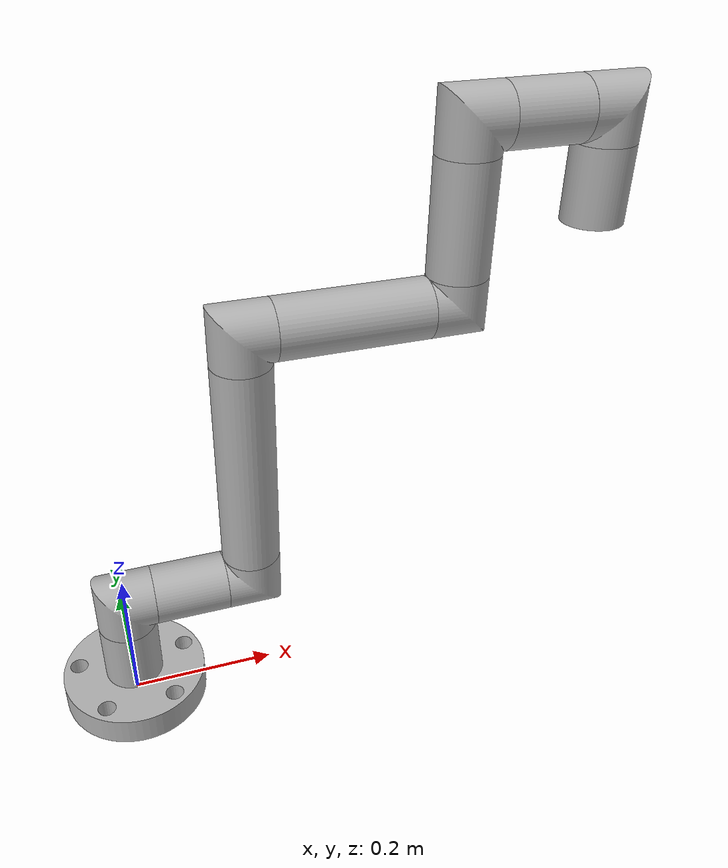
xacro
<?xml version="1.0" ?>
<robot name="Finalporsia" xmlns:xacro="http://www.ros.org/wiki/xacro">

<xacro:include filename="$(find Finalporsia_description)/urdf/materials.xacro" />
<xacro:include filename="$(find Finalporsia_description)/urdf/Finalporsia.trans" />
<xacro:include filename="$(find Finalporsia_description)/urdf/Finalporsia.gazebo" />
<link name="base_link">
  <inertial>
    <origin rpy="0 0 0" xyz="-1.2735343093175715e-13 -1.8051513952056297e-17 0.019251753702260326"/>
    <mass value="7.910176872565533"/>
    <inertia ixx="0.022781" ixy="-0.0" ixz="0.0" iyy="0.022781" iyz="0.0" izz="0.043383"/>
  </inertial>
  <visual>
    <origin rpy="0 0 0" xyz="0 0 0"/>
    <geometry>
      <mesh filename="package://Finalporsia_description/meshes/base_link.stl" scale="0.001 0.001 0.001"/>
    </geometry>
    <material name="silver"/>
  </visual>
  <collision>
    <origin rpy="0 0 0" xyz="0 0 0"/>
    <geometry>
      <mesh filename="package://Finalporsia_description/meshes/base_link.stl" scale="0.001 0.001 0.001"/>
    </geometry>
  </collision>
</link>

<link name="Component14_1">
  <inertial>
    <origin rpy="0 0 0" xyz="-4.545697152025241e-12 -3.674055437052949e-11 -0.04919483100108901"/>
    <mass value="3.876479897603745"/>
    <inertia ixx="0.004691" ixy="-0.0" ixz="-0.0" iyy="0.004691" iyz="0.0" izz="0.003092"/>
  </inertial>
  <visual>
    <origin rpy="0 0 0" xyz="-0.64 0.0 -0.74"/>
    <geometry>
      <mesh filename="package://Finalporsia_description/meshes/Component14_1.stl" scale="0.001 0.001 0.001"/>
    </geometry>
    <material name="silver"/>
  </visual>
  <collision>
    <origin rpy="0 0 0" xyz="-0.64 0.0 -0.74"/>
    <geometry>
      <mesh filename="package://Finalporsia_description/meshes/Component14_1.stl" scale="0.001 0.001 0.001"/>
    </geometry>
  </collision>
</link>

<link name="Component13_1">
  <inertial>
    <origin rpy="0 0 0" xyz="0.03749999997575548 -1.2727032991334325e-10 -0.002499999953929133"/>
    <mass value="3.156672298327024"/>
    <inertia ixx="0.002716" ixy="-0.0" ixz="2e-05" iyy="0.002907" iyz="0.0" izz="0.002716"/>
  </inertial>
  <visual>
    <origin rpy="0 0 0" xyz="-0.6 0.0 -0.78"/>
    <geometry>
      <mesh filename="package://Finalporsia_description/meshes/Component13_1.stl" scale="0.001 0.001 0.001"/>
    </geometry>
    <material name="silver"/>
  </visual>
  <collision>
    <origin rpy="0 0 0" xyz="-0.6 0.0 -0.78"/>
    <geometry>
      <mesh filename="package://Finalporsia_description/meshes/Component13_1.stl" scale="0.001 0.001 0.001"/>
    </geometry>
  </collision>
</link>

<link name="Component12_1">
  <inertial>
    <origin rpy="0 0 0" xyz="0.04999999997573523 -1.2765637495659394e-10 4.535805064875831e-11"/>
    <mass value="3.9458403729087896"/>
    <inertia ixx="0.003157" ixy="0.0" ixz="-0.0" iyy="0.004867" iyz="0.0" izz="0.004867"/>
  </inertial>
  <visual>
    <origin rpy="0 0 0" xyz="-0.5 0.0 -0.78"/>
    <geometry>
      <mesh filename="package://Finalporsia_description/meshes/Component12_1.stl" scale="0.001 0.001 0.001"/>
    </geometry>
    <material name="silver"/>
  </visual>
  <collision>
    <origin rpy="0 0 0" xyz="-0.5 0.0 -0.78"/>
    <geometry>
      <mesh filename="package://Finalporsia_description/meshes/Component12_1.stl" scale="0.001 0.001 0.001"/>
    </geometry>
  </collision>
</link>

<link name="Component11_1">
  <inertial>
    <origin rpy="0 0 0" xyz="0.00249999997575584 -1.2726988728068545e-10 0.037500000044644155"/>
    <mass value="3.156672298327024"/>
    <inertia ixx="0.002716" ixy="0.0" ixz="-2e-05" iyy="0.002907" iyz="0.0" izz="0.002716"/>
  </inertial>
  <visual>
    <origin rpy="0 0 0" xyz="-0.46 0.0 -0.74"/>
    <geometry>
      <mesh filename="package://Finalporsia_description/meshes/Component11_1.stl" scale="0.001 0.001 0.001"/>
    </geometry>
    <material name="silver"/>
  </visual>
  <collision>
    <origin rpy="0 0 0" xyz="-0.46 0.0 -0.74"/>
    <geometry>
      <mesh filename="package://Finalporsia_description/meshes/Component11_1.stl" scale="0.001 0.001 0.001"/>
    </geometry>
  </collision>
</link>

<link name="Component10_1">
  <inertial>
    <origin rpy="0 0 0" xyz="-2.3327395570760245e-11 -1.0987604905552365e-10 0.07500000004462448"/>
    <mass value="5.91876055936317"/>
    <inertia ixx="0.013465" ixy="0.0" ixz="0.0" iyy="0.013465" iyz="0.0" izz="0.004735"/>
  </inertial>
  <visual>
    <origin rpy="0 0 0" xyz="-0.46 0.0 -0.59"/>
    <geometry>
      <mesh filename="package://Finalporsia_description/meshes/Component10_1.stl" scale="0.001 0.001 0.001"/>
    </geometry>
    <material name="silver"/>
  </visual>
  <collision>
    <origin rpy="0 0 0" xyz="-0.46 0.0 -0.59"/>
    <geometry>
      <mesh filename="package://Finalporsia_description/meshes/Component10_1.stl" scale="0.001 0.001 0.001"/>
    </geometry>
  </collision>
</link>

<link name="Component9_1">
  <inertial>
    <origin rpy="0 0 0" xyz="0.037499999977589626 -9.248224070317917e-11 0.002500000044604045"/>
    <mass value="3.1566722983270243"/>
    <inertia ixx="0.002716" ixy="0.0" ixz="-2e-05" iyy="0.002907" iyz="0.0" izz="0.002716"/>
  </inertial>
  <visual>
    <origin rpy="0 0 0" xyz="-0.42 0.0 -0.55"/>
    <geometry>
      <mesh filename="package://Finalporsia_description/meshes/Component9_1.stl" scale="0.001 0.001 0.001"/>
    </geometry>
    <material name="silver"/>
  </visual>
  <collision>
    <origin rpy="0 0 0" xyz="-0.42 0.0 -0.55"/>
    <geometry>
      <mesh filename="package://Finalporsia_description/meshes/Component9_1.stl" scale="0.001 0.001 0.001"/>
    </geometry>
  </collision>
</link>

<link name="Component8_1">
  <inertial>
    <origin rpy="0 0 0" xyz="0.09999999997760997 -9.209581122134614e-11 4.348299498246888e-11"/>
    <mass value="7.891680745817552"/>
    <inertia ixx="0.006313" ixy="-0.0" ixz="-0.0" iyy="0.029462" iyz="0.0" izz="0.029462"/>
  </inertial>
  <visual>
    <origin rpy="0 0 0" xyz="-0.22 0.0 -0.55"/>
    <geometry>
      <mesh filename="package://Finalporsia_description/meshes/Component8_1.stl" scale="0.001 0.001 0.001"/>
    </geometry>
    <material name="silver"/>
  </visual>
  <collision>
    <origin rpy="0 0 0" xyz="-0.22 0.0 -0.55"/>
    <geometry>
      <mesh filename="package://Finalporsia_description/meshes/Component8_1.stl" scale="0.001 0.001 0.001"/>
    </geometry>
  </collision>
</link>

<link name="Component7_1">
  <inertial>
    <origin rpy="0 0 0" xyz="0.002499999976995182 -9.177960162430434e-11 0.0375000000425737"/>
    <mass value="3.156672298327024"/>
    <inertia ixx="0.002716" ixy="0.0" ixz="-2e-05" iyy="0.002907" iyz="0.0" izz="0.002716"/>
  </inertial>
  <visual>
    <origin rpy="0 0 0" xyz="-0.18 -0.0 -0.51"/>
    <geometry>
      <mesh filename="package://Finalporsia_description/meshes/Component7_1.stl" scale="0.001 0.001 0.001"/>
    </geometry>
    <material name="silver"/>
  </visual>
  <collision>
    <origin rpy="0 0 0" xyz="-0.18 -0.0 -0.51"/>
    <geometry>
      <mesh filename="package://Finalporsia_description/meshes/Component7_1.stl" scale="0.001 0.001 0.001"/>
    </geometry>
  </collision>
</link>

<link name="Component6_1">
  <inertial>
    <origin rpy="0 0 0" xyz="5.842187844606883e-12 2.521468302556732e-11 0.14999999999446453"/>
    <mass value="11.837521118726338"/>
    <inertia ixx="0.093516" ixy="0.0" ixz="-0.0" iyy="0.093516" iyz="-0.0" izz="0.00947"/>
  </inertial>
  <visual>
    <origin rpy="0 0 0" xyz="-0.18 -0.0 -0.21"/>
    <geometry>
      <mesh filename="package://Finalporsia_description/meshes/Component6_1.stl" scale="0.001 0.001 0.001"/>
    </geometry>
    <material name="silver"/>
  </visual>
  <collision>
    <origin rpy="0 0 0" xyz="-0.18 -0.0 -0.21"/>
    <geometry>
      <mesh filename="package://Finalporsia_description/meshes/Component6_1.stl" scale="0.001 0.001 0.001"/>
    </geometry>
  </collision>
</link>

<link name="Component5_1">
  <inertial>
    <origin rpy="0 0 0" xyz="0.037500000000076084 3.3190883744839116e-13 0.002499999994541535"/>
    <mass value="3.156672298327024"/>
    <inertia ixx="0.002716" ixy="-0.0" ixz="-2e-05" iyy="0.002907" iyz="-0.0" izz="0.002716"/>
  </inertial>
  <visual>
    <origin rpy="0 0 0" xyz="-0.14 -0.0 -0.17"/>
    <geometry>
      <mesh filename="package://Finalporsia_description/meshes/Component5_1.stl" scale="0.001 0.001 0.001"/>
    </geometry>
    <material name="silver"/>
  </visual>
  <collision>
    <origin rpy="0 0 0" xyz="-0.14 -0.0 -0.17"/>
    <geometry>
      <mesh filename="package://Finalporsia_description/meshes/Component5_1.stl" scale="0.001 0.001 0.001"/>
    </geometry>
  </collision>
</link>

<link name="Component4_1">
  <inertial>
    <origin rpy="0 0 0" xyz="0.04999999999999966 1.340279702599643e-16 -2.767813755966131e-12"/>
    <mass value="3.94584037290878"/>
    <inertia ixx="0.003157" ixy="-0.0" ixz="0.0" iyy="0.004867" iyz="0.0" izz="0.004867"/>
  </inertial>
  <visual>
    <origin rpy="0 0 0" xyz="-0.04 0.0 -0.17"/>
    <geometry>
      <mesh filename="package://Finalporsia_description/meshes/Component4_1.stl" scale="0.001 0.001 0.001"/>
    </geometry>
    <material name="silver"/>
  </visual>
  <collision>
    <origin rpy="0 0 0" xyz="-0.04 0.0 -0.17"/>
    <geometry>
      <mesh filename="package://Finalporsia_description/meshes/Component4_1.stl" scale="0.001 0.001 0.001"/>
    </geometry>
  </collision>
</link>

<link name="Component3_1">
  <inertial>
    <origin rpy="0 0 0" xyz="0.002500000000000161 0.0 0.03749999999999981"/>
    <mass value="3.156672298327024"/>
    <inertia ixx="0.002716" ixy="0.0" ixz="-2e-05" iyy="0.002907" iyz="0.0" izz="0.002716"/>
  </inertial>
  <visual>
    <origin rpy="0 0 0" xyz="-0.0 -0.0 -0.13"/>
    <geometry>
      <mesh filename="package://Finalporsia_description/meshes/Component3_1.stl" scale="0.001 0.001 0.001"/>
    </geometry>
    <material name="silver"/>
  </visual>
  <collision>
    <origin rpy="0 0 0" xyz="-0.0 -0.0 -0.13"/>
    <geometry>
      <mesh filename="package://Finalporsia_description/meshes/Component3_1.stl" scale="0.001 0.001 0.001"/>
    </geometry>
  </collision>
</link>

<link name="Component2_1">
  <inertial>
    <origin rpy="0 0 0" xyz="0.0 0.0 0.060000000000000005"/>
    <mass value="4.735008447490536"/>
    <inertia ixx="0.007576" ixy="0.0" ixz="0.0" iyy="0.007576" iyz="0.0" izz="0.003788"/>
  </inertial>
  <visual>
    <origin rpy="0 0 0" xyz="-0.0 -0.0 -0.01"/>
    <geometry>
      <mesh filename="package://Finalporsia_description/meshes/Component2_1.stl" scale="0.001 0.001 0.001"/>
    </geometry>
    <material name="silver"/>
  </visual>
  <collision>
    <origin rpy="0 0 0" xyz="-0.0 -0.0 -0.01"/>
    <geometry>
      <mesh filename="package://Finalporsia_description/meshes/Component2_1.stl" scale="0.001 0.001 0.001"/>
    </geometry>
  </collision>
</link>

<joint name="Rev1" type="continuous">
  <origin rpy="0 0 0" xyz="0.04 0.0 -0.04"/>
  <parent link="Component13_1"/>
  <child link="Component14_1"/>
  <axis xyz="0.0 0.0 -1.0"/>
</joint>

<joint name="Rigid2" type="fixed">
  <origin rpy="0 0 0" xyz="0.1 0.0 0.0"/>
  <parent link="Component12_1"/>
  <child link="Component13_1"/>
</joint>

<joint name="Rev3" type="continuous">
  <origin rpy="0 0 0" xyz="0.04 0.0 0.04"/>
  <parent link="Component11_1"/>
  <child link="Component12_1"/>
  <axis xyz="1.0 -0.0 0.0"/>
</joint>

<joint name="Rigid4" type="fixed">
  <origin rpy="0 0 0" xyz="0.0 0.0 0.15"/>
  <parent link="Component10_1"/>
  <child link="Component11_1"/>
</joint>

<joint name="Rev5" type="continuous">
  <origin rpy="0 0 0" xyz="0.04 0.0 0.04"/>
  <parent link="Component9_1"/>
  <child link="Component10_1"/>
  <axis xyz="-0.0 -0.0 1.0"/>
</joint>

<joint name="Rigid6" type="fixed">
  <origin rpy="0 0 0" xyz="0.2 0.0 0.0"/>
  <parent link="Component8_1"/>
  <child link="Component9_1"/>
</joint>

<joint name="Rev7" type="continuous">
  <origin rpy="0 0 0" xyz="0.04 -0.0 0.04"/>
  <parent link="Component7_1"/>
  <child link="Component8_1"/>
  <axis xyz="1.0 0.0 0.0"/>
</joint>

<joint name="Rigid8" type="fixed">
  <origin rpy="0 0 0" xyz="0.0 0.0 0.3"/>
  <parent link="Component6_1"/>
  <child link="Component7_1"/>
</joint>

<joint name="Rev9" type="continuous">
  <origin rpy="0 0 0" xyz="0.04 0.0 0.04"/>
  <parent link="Component5_1"/>
  <child link="Component6_1"/>
  <axis xyz="0.0 0.0 1.0"/>
</joint>

<joint name="Rigid10" type="fixed">
  <origin rpy="0 0 0" xyz="0.1 0.0 0.0"/>
  <parent link="Component4_1"/>
  <child link="Component5_1"/>
</joint>

<joint name="Rev11" type="continuous">
  <origin rpy="0 0 0" xyz="0.04 -0.0 0.04"/>
  <parent link="Component3_1"/>
  <child link="Component4_1"/>
  <axis xyz="1.0 0.0 0.0"/>
</joint>

<joint name="Rigid12" type="fixed">
  <origin rpy="0 0 0" xyz="0.0 0.0 0.12"/>
  <parent link="Component2_1"/>
  <child link="Component3_1"/>
</joint>

<joint name="Rev13" type="continuous">
  <origin rpy="0 0 0" xyz="0.0 0.0 0.01"/>
  <parent link="base_link"/>
  <child link="Component2_1"/>
  <axis xyz="0.0 0.0 -1.0"/>
</joint>

</robot>

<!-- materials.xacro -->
<robot name="Finalporsia" xmlns:xacro="http://www.ros.org/wiki/xacro" >

<material name="silver">
  <color rgba="0.700 0.700 0.700 1.000"/>
</material>

</robot>

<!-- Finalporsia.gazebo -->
<robot name="Finalporsia" xmlns:xacro="http://www.ros.org/wiki/xacro" >

<xacro:property name="body_color" value="Gazebo/Silver" />

<gazebo>
  <plugin filename="libgazebo_ros_control.so" name="control"/>
</gazebo>
<gazebo reference="base_link">
  <material>${body_color}</material>
  <mu1>0.2</mu1>
  <mu2>0.2</mu2>
  <selfCollide>true</selfCollide>
  <gravity>true</gravity>
</gazebo>

<gazebo reference="Component14_1">
  <material>${body_color}</material>
  <mu1>0.2</mu1>
  <mu2>0.2</mu2>
  <selfCollide>true</selfCollide>
</gazebo>

<gazebo reference="Component13_1">
  <material>${body_color}</material>
  <mu1>0.2</mu1>
  <mu2>0.2</mu2>
  <selfCollide>true</selfCollide>
</gazebo>

<gazebo reference="Component12_1">
  <material>${body_color}</material>
  <mu1>0.2</mu1>
  <mu2>0.2</mu2>
  <selfCollide>true</selfCollide>
</gazebo>

<gazebo reference="Component11_1">
  <material>${body_color}</material>
  <mu1>0.2</mu1>
  <mu2>0.2</mu2>
  <selfCollide>true</selfCollide>
</gazebo>

<gazebo reference="Component10_1">
  <material>${body_color}</material>
  <mu1>0.2</mu1>
  <mu2>0.2</mu2>
  <selfCollide>true</selfCollide>
</gazebo>

<gazebo reference="Component9_1">
  <material>${body_color}</material>
  <mu1>0.2</mu1>
  <mu2>0.2</mu2>
  <selfCollide>true</selfCollide>
</gazebo>

<gazebo reference="Component8_1">
  <material>${body_color}</material>
  <mu1>0.2</mu1>
  <mu2>0.2</mu2>
  <selfCollide>true</selfCollide>
</gazebo>

<gazebo reference="Component7_1">
  <material>${body_color}</material>
  <mu1>0.2</mu1>
  <mu2>0.2</mu2>
  <selfCollide>true</selfCollide>
</gazebo>

<gazebo reference="Component6_1">
  <material>${body_color}</material>
  <mu1>0.2</mu1>
  <mu2>0.2</mu2>
  <selfCollide>true</selfCollide>
</gazebo>

<gazebo reference="Component5_1">
  <material>${body_color}</material>
  <mu1>0.2</mu1>
  <mu2>0.2</mu2>
  <selfCollide>true</selfCollide>
</gazebo>

<gazebo reference="Component4_1">
  <material>${body_color}</material>
  <mu1>0.2</mu1>
  <mu2>0.2</mu2>
  <selfCollide>true</selfCollide>
</gazebo>

<gazebo reference="Component3_1">
  <material>${body_color}</material>
  <mu1>0.2</mu1>
  <mu2>0.2</mu2>
  <selfCollide>true</selfCollide>
</gazebo>

<gazebo reference="Component2_1">
  <material>${body_color}</material>
  <mu1>0.2</mu1>
  <mu2>0.2</mu2>
  <selfCollide>true</selfCollide>
</gazebo>

</robot>
